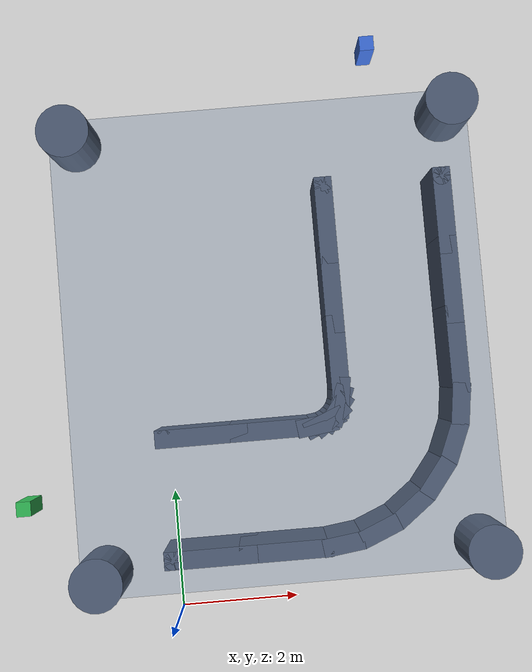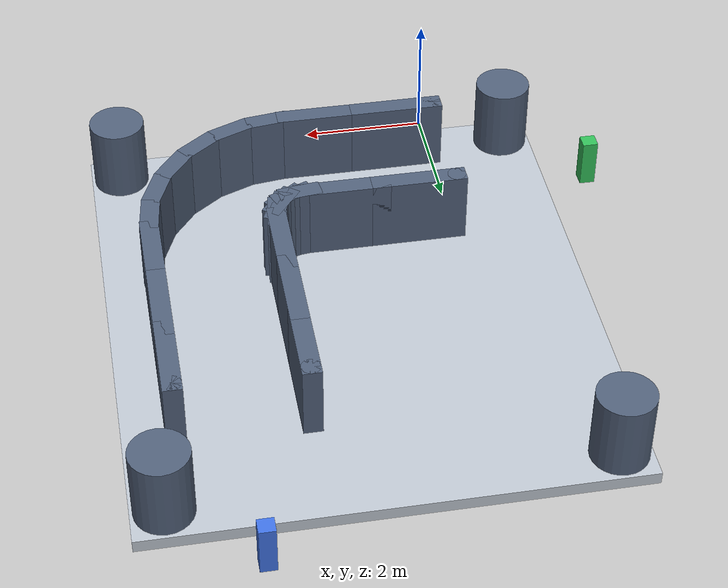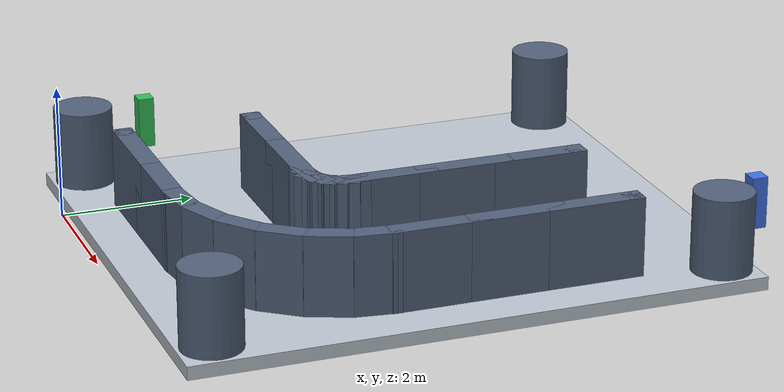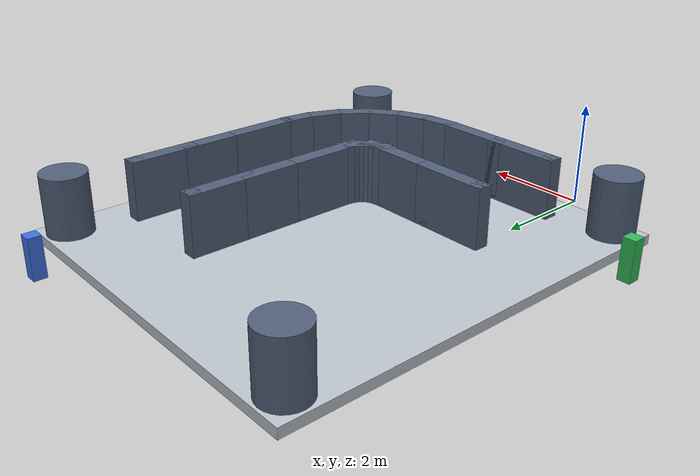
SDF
<?xml version="1.0"?>
<sdf version="1.6">
  <world name="l">
    <light type="directional" name="sun">
      <pose>0 0 10 0 0 0</pose>
      <diffuse>0.8 0.8 0.8 1</diffuse>
      <specular>0.2 0.2 0.2 1</specular>
      <direction>-0.5 0.5 -1</direction>
    </light>
    <scene>
      <ambient>0.3 0.3 0.3 1</ambient>
      <background>0.7 0.7 0.7 1</background>
      <shadows>true</shadows>
    </scene>
    <model name="ground_plane">
      <static>true</static>
      <pose>2.000 4.500 -0.1 0 0 0</pose>
      <link name="link">
        <collision name="collision">
          <geometry><box><size>7.60 8.60 0.2</size></box></geometry>
          <surface>
            <friction><ode><mu>1</mu><mu2>1</mu2></ode></friction>
          </surface>
        </collision>
        <visual name="visual">
          <geometry><box><size>7.60 8.60 0.2</size></box></geometry>
          <material>
            <ambient>0.75 0.78 0.82 1</ambient>
            <diffuse>0.75 0.78 0.82 1</diffuse>
          </material>
        </visual>
      </link>
    </model>
    <!-- ============ 迷宫墙体（深蓝灰；box 墙段 + 圆柱圆头） ============ -->
    <model name="wall_00">
      <static>true</static>
      <pose>0.625 3.000 0.600 0 0 0.0000</pose>
      <link name="link">
        <collision name="collision">
          <geometry><box><size>1.550 0.300 1.2</size></box></geometry>
        </collision>
        <visual name="visual">
          <geometry><box><size>1.550 0.300 1.2</size></box></geometry>
          <material><ambient>0.32 0.38 0.48 1</ambient><diffuse>0.32 0.38 0.48 1</diffuse></material>
        </visual>
      </link>
    </model>
    <model name="wall_01">
      <static>true</static>
      <pose>0.625 1.000 0.600 0 0 0.0000</pose>
      <link name="link">
        <collision name="collision">
          <geometry><box><size>1.550 0.300 1.2</size></box></geometry>
        </collision>
        <visual name="visual">
          <geometry><box><size>1.550 0.300 1.2</size></box></geometry>
          <material><ambient>0.32 0.38 0.48 1</ambient><diffuse>0.32 0.38 0.48 1</diffuse></material>
        </visual>
      </link>
    </model>
    <model name="wall_02">
      <static>true</static>
      <pose>1.875 3.000 0.600 0 0 0.0000</pose>
      <link name="link">
        <collision name="collision">
          <geometry><box><size>1.550 0.300 1.2</size></box></geometry>
        </collision>
        <visual name="visual">
          <geometry><box><size>1.550 0.300 1.2</size></box></geometry>
          <material><ambient>0.32 0.38 0.48 1</ambient><diffuse>0.32 0.38 0.48 1</diffuse></material>
        </visual>
      </link>
    </model>
    <model name="wall_03">
      <static>true</static>
      <pose>1.875 1.000 0.600 0 0 0.0000</pose>
      <link name="link">
        <collision name="collision">
          <geometry><box><size>1.550 0.300 1.2</size></box></geometry>
        </collision>
        <visual name="visual">
          <geometry><box><size>1.550 0.300 1.2</size></box></geometry>
          <material><ambient>0.32 0.38 0.48 1</ambient><diffuse>0.32 0.38 0.48 1</diffuse></material>
        </visual>
      </link>
    </model>
    <model name="wall_04">
      <static>true</static>
      <pose>2.564 3.017 0.600 0 0 0.1309</pose>
      <link name="link">
        <collision name="collision">
          <geometry><box><size>0.692 0.300 1.2</size></box></geometry>
        </collision>
        <visual name="visual">
          <geometry><box><size>0.692 0.300 1.2</size></box></geometry>
          <material><ambient>0.32 0.38 0.48 1</ambient><diffuse>0.32 0.38 0.48 1</diffuse></material>
        </visual>
      </link>
    </model>
    <model name="wall_05">
      <static>true</static>
      <pose>2.825 1.034 0.600 0 0 0.1309</pose>
      <link name="link">
        <collision name="collision">
          <geometry><box><size>0.692 0.300 1.2</size></box></geometry>
        </collision>
        <visual name="visual">
          <geometry><box><size>0.692 0.300 1.2</size></box></geometry>
          <material><ambient>0.32 0.38 0.48 1</ambient><diffuse>0.32 0.38 0.48 1</diffuse></material>
        </visual>
      </link>
    </model>
    <model name="wall_06">
      <static>true</static>
      <pose>2.686 3.050 0.600 0 0 0.3927</pose>
      <link name="link">
        <collision name="collision">
          <geometry><box><size>0.692 0.300 1.2</size></box></geometry>
        </collision>
        <visual name="visual">
          <geometry><box><size>0.692 0.300 1.2</size></box></geometry>
          <material><ambient>0.32 0.38 0.48 1</ambient><diffuse>0.32 0.38 0.48 1</diffuse></material>
        </visual>
      </link>
    </model>
    <model name="wall_07">
      <static>true</static>
      <pose>3.452 1.202 0.600 0 0 0.3927</pose>
      <link name="link">
        <collision name="collision">
          <geometry><box><size>0.692 0.300 1.2</size></box></geometry>
        </collision>
        <visual name="visual">
          <geometry><box><size>0.692 0.300 1.2</size></box></geometry>
          <material><ambient>0.32 0.38 0.48 1</ambient><diffuse>0.32 0.38 0.48 1</diffuse></material>
        </visual>
      </link>
    </model>
    <model name="wall_08">
      <static>true</static>
      <pose>2.797 3.114 0.600 0 0 0.6545</pose>
      <link name="link">
        <collision name="collision">
          <geometry><box><size>0.692 0.300 1.2</size></box></geometry>
        </collision>
        <visual name="visual">
          <geometry><box><size>0.692 0.300 1.2</size></box></geometry>
          <material><ambient>0.32 0.38 0.48 1</ambient><diffuse>0.32 0.38 0.48 1</diffuse></material>
        </visual>
      </link>
    </model>
    <model name="wall_09">
      <static>true</static>
      <pose>4.014 1.527 0.600 0 0 0.6545</pose>
      <link name="link">
        <collision name="collision">
          <geometry><box><size>0.692 0.300 1.2</size></box></geometry>
        </collision>
        <visual name="visual">
          <geometry><box><size>0.692 0.300 1.2</size></box></geometry>
          <material><ambient>0.32 0.38 0.48 1</ambient><diffuse>0.32 0.38 0.48 1</diffuse></material>
        </visual>
      </link>
    </model>
    <model name="wall_10">
      <static>true</static>
      <pose>2.886 3.203 0.600 0 0 0.9163</pose>
      <link name="link">
        <collision name="collision">
          <geometry><box><size>0.692 0.300 1.2</size></box></geometry>
        </collision>
        <visual name="visual">
          <geometry><box><size>0.692 0.300 1.2</size></box></geometry>
          <material><ambient>0.32 0.38 0.48 1</ambient><diffuse>0.32 0.38 0.48 1</diffuse></material>
        </visual>
      </link>
    </model>
    <model name="wall_11">
      <static>true</static>
      <pose>4.473 1.986 0.600 0 0 0.9163</pose>
      <link name="link">
        <collision name="collision">
          <geometry><box><size>0.692 0.300 1.2</size></box></geometry>
        </collision>
        <visual name="visual">
          <geometry><box><size>0.692 0.300 1.2</size></box></geometry>
          <material><ambient>0.32 0.38 0.48 1</ambient><diffuse>0.32 0.38 0.48 1</diffuse></material>
        </visual>
      </link>
    </model>
    <model name="wall_12">
      <static>true</static>
      <pose>2.950 3.314 0.600 0 0 1.1781</pose>
      <link name="link">
        <collision name="collision">
          <geometry><box><size>0.692 0.300 1.2</size></box></geometry>
        </collision>
        <visual name="visual">
          <geometry><box><size>0.692 0.300 1.2</size></box></geometry>
          <material><ambient>0.32 0.38 0.48 1</ambient><diffuse>0.32 0.38 0.48 1</diffuse></material>
        </visual>
      </link>
    </model>
    <model name="wall_13">
      <static>true</static>
      <pose>4.798 2.548 0.600 0 0 1.1781</pose>
      <link name="link">
        <collision name="collision">
          <geometry><box><size>0.692 0.300 1.2</size></box></geometry>
        </collision>
        <visual name="visual">
          <geometry><box><size>0.692 0.300 1.2</size></box></geometry>
          <material><ambient>0.32 0.38 0.48 1</ambient><diffuse>0.32 0.38 0.48 1</diffuse></material>
        </visual>
      </link>
    </model>
    <model name="wall_14">
      <static>true</static>
      <pose>2.983 3.436 0.600 0 0 1.4399</pose>
      <link name="link">
        <collision name="collision">
          <geometry><box><size>0.692 0.300 1.2</size></box></geometry>
        </collision>
        <visual name="visual">
          <geometry><box><size>0.692 0.300 1.2</size></box></geometry>
          <material><ambient>0.32 0.38 0.48 1</ambient><diffuse>0.32 0.38 0.48 1</diffuse></material>
        </visual>
      </link>
    </model>
    <model name="wall_15">
      <static>true</static>
      <pose>4.966 3.175 0.600 0 0 1.4399</pose>
      <link name="link">
        <collision name="collision">
          <geometry><box><size>0.692 0.300 1.2</size></box></geometry>
        </collision>
        <visual name="visual">
          <geometry><box><size>0.692 0.300 1.2</size></box></geometry>
          <material><ambient>0.32 0.38 0.48 1</ambient><diffuse>0.32 0.38 0.48 1</diffuse></material>
        </visual>
      </link>
    </model>
    <model name="wall_16">
      <static>true</static>
      <pose>3.000 4.083 0.600 0 0 1.5708</pose>
      <link name="link">
        <collision name="collision">
          <geometry><box><size>1.467 0.300 1.2</size></box></geometry>
        </collision>
        <visual name="visual">
          <geometry><box><size>1.467 0.300 1.2</size></box></geometry>
          <material><ambient>0.32 0.38 0.48 1</ambient><diffuse>0.32 0.38 0.48 1</diffuse></material>
        </visual>
      </link>
    </model>
    <model name="wall_17">
      <static>true</static>
      <pose>5.000 4.083 0.600 0 0 1.5708</pose>
      <link name="link">
        <collision name="collision">
          <geometry><box><size>1.467 0.300 1.2</size></box></geometry>
        </collision>
        <visual name="visual">
          <geometry><box><size>1.467 0.300 1.2</size></box></geometry>
          <material><ambient>0.32 0.38 0.48 1</ambient><diffuse>0.32 0.38 0.48 1</diffuse></material>
        </visual>
      </link>
    </model>
    <model name="wall_18">
      <static>true</static>
      <pose>3.000 5.250 0.600 0 0 1.5708</pose>
      <link name="link">
        <collision name="collision">
          <geometry><box><size>1.467 0.300 1.2</size></box></geometry>
        </collision>
        <visual name="visual">
          <geometry><box><size>1.467 0.300 1.2</size></box></geometry>
          <material><ambient>0.32 0.38 0.48 1</ambient><diffuse>0.32 0.38 0.48 1</diffuse></material>
        </visual>
      </link>
    </model>
    <model name="wall_19">
      <static>true</static>
      <pose>5.000 5.250 0.600 0 0 1.5708</pose>
      <link name="link">
        <collision name="collision">
          <geometry><box><size>1.467 0.300 1.2</size></box></geometry>
        </collision>
        <visual name="visual">
          <geometry><box><size>1.467 0.300 1.2</size></box></geometry>
          <material><ambient>0.32 0.38 0.48 1</ambient><diffuse>0.32 0.38 0.48 1</diffuse></material>
        </visual>
      </link>
    </model>
    <model name="wall_20">
      <static>true</static>
      <pose>3.000 6.417 0.600 0 0 1.5708</pose>
      <link name="link">
        <collision name="collision">
          <geometry><box><size>1.467 0.300 1.2</size></box></geometry>
        </collision>
        <visual name="visual">
          <geometry><box><size>1.467 0.300 1.2</size></box></geometry>
          <material><ambient>0.32 0.38 0.48 1</ambient><diffuse>0.32 0.38 0.48 1</diffuse></material>
        </visual>
      </link>
    </model>
    <model name="wall_21">
      <static>true</static>
      <pose>5.000 6.417 0.600 0 0 1.5708</pose>
      <link name="link">
        <collision name="collision">
          <geometry><box><size>1.467 0.300 1.2</size></box></geometry>
        </collision>
        <visual name="visual">
          <geometry><box><size>1.467 0.300 1.2</size></box></geometry>
          <material><ambient>0.32 0.38 0.48 1</ambient><diffuse>0.32 0.38 0.48 1</diffuse></material>
        </visual>
      </link>
    </model>
    <model name="pillar_00">
      <static>true</static>
      <pose>0.000 3.000 0.600 0 0 0</pose>
      <link name="link">
        <collision name="collision">
          <geometry><cylinder><radius>0.150</radius><length>1.2</length></cylinder></geometry>
        </collision>
        <visual name="visual">
          <geometry><cylinder><radius>0.150</radius><length>1.2</length></cylinder></geometry>
          <material><ambient>0.32 0.38 0.48 1</ambient><diffuse>0.32 0.38 0.48 1</diffuse></material>
        </visual>
      </link>
    </model>
    <model name="pillar_01">
      <static>true</static>
      <pose>3.000 7.000 0.600 0 0 0</pose>
      <link name="link">
        <collision name="collision">
          <geometry><cylinder><radius>0.150</radius><length>1.2</length></cylinder></geometry>
        </collision>
        <visual name="visual">
          <geometry><cylinder><radius>0.150</radius><length>1.2</length></cylinder></geometry>
          <material><ambient>0.32 0.38 0.48 1</ambient><diffuse>0.32 0.38 0.48 1</diffuse></material>
        </visual>
      </link>
    </model>
    <model name="pillar_02">
      <static>true</static>
      <pose>0.000 1.000 0.600 0 0 0</pose>
      <link name="link">
        <collision name="collision">
          <geometry><cylinder><radius>0.150</radius><length>1.2</length></cylinder></geometry>
        </collision>
        <visual name="visual">
          <geometry><cylinder><radius>0.150</radius><length>1.2</length></cylinder></geometry>
          <material><ambient>0.32 0.38 0.48 1</ambient><diffuse>0.32 0.38 0.48 1</diffuse></material>
        </visual>
      </link>
    </model>
    <model name="pillar_03">
      <static>true</static>
      <pose>5.000 7.000 0.600 0 0 0</pose>
      <link name="link">
        <collision name="collision">
          <geometry><cylinder><radius>0.150</radius><length>1.2</length></cylinder></geometry>
        </collision>
        <visual name="visual">
          <geometry><cylinder><radius>0.150</radius><length>1.2</length></cylinder></geometry>
          <material><ambient>0.32 0.38 0.48 1</ambient><diffuse>0.32 0.38 0.48 1</diffuse></material>
        </visual>
      </link>
    </model>
    <model name="pillar_04">
      <static>true</static>
      <pose>-1.300 0.700 0.600 0 0 0</pose>
      <link name="link">
        <collision name="collision">
          <geometry><cylinder><radius>0.450</radius><length>1.2</length></cylinder></geometry>
        </collision>
        <visual name="visual">
          <geometry><cylinder><radius>0.450</radius><length>1.2</length></cylinder></geometry>
          <material><ambient>0.32 0.38 0.48 1</ambient><diffuse>0.32 0.38 0.48 1</diffuse></material>
        </visual>
      </link>
    </model>
    <model name="pillar_05">
      <static>true</static>
      <pose>-1.300 8.300 0.600 0 0 0</pose>
      <link name="link">
        <collision name="collision">
          <geometry><cylinder><radius>0.450</radius><length>1.2</length></cylinder></geometry>
        </collision>
        <visual name="visual">
          <geometry><cylinder><radius>0.450</radius><length>1.2</length></cylinder></geometry>
          <material><ambient>0.32 0.38 0.48 1</ambient><diffuse>0.32 0.38 0.48 1</diffuse></material>
        </visual>
      </link>
    </model>
    <model name="pillar_06">
      <static>true</static>
      <pose>5.300 0.700 0.600 0 0 0</pose>
      <link name="link">
        <collision name="collision">
          <geometry><cylinder><radius>0.450</radius><length>1.2</length></cylinder></geometry>
        </collision>
        <visual name="visual">
          <geometry><cylinder><radius>0.450</radius><length>1.2</length></cylinder></geometry>
          <material><ambient>0.32 0.38 0.48 1</ambient><diffuse>0.32 0.38 0.48 1</diffuse></material>
        </visual>
      </link>
    </model>
    <model name="pillar_07">
      <static>true</static>
      <pose>5.300 8.300 0.600 0 0 0</pose>
      <link name="link">
        <collision name="collision">
          <geometry><cylinder><radius>0.450</radius><length>1.2</length></cylinder></geometry>
        </collision>
        <visual name="visual">
          <geometry><cylinder><radius>0.450</radius><length>1.2</length></cylinder></geometry>
          <material><ambient>0.32 0.38 0.48 1</ambient><diffuse>0.32 0.38 0.48 1</diffuse></material>
        </visual>
      </link>
    </model>
    <!-- ============ 起终点标记柱 ============ -->
    <model name="marker_entry">
      <static>true</static>
      <pose>-2.500 2.000 0.4 0 0 0</pose>
      <link name="link">
        <collision name="collision">
          <geometry><box><size>0.25 0.25 0.8</size></box></geometry>
        </collision>
        <visual name="visual">
          <geometry><box><size>0.25 0.25 0.8</size></box></geometry>
          <material><ambient>0.2 0.75 0.35 1</ambient><diffuse>0.2 0.75 0.35 1</diffuse></material>
        </visual>
      </link>
    </model>
    <model name="marker_exit">
      <static>true</static>
      <pose>4.000 9.500 0.4 0 0 0</pose>
      <link name="link">
        <collision name="collision">
          <geometry><box><size>0.25 0.25 0.8</size></box></geometry>
        </collision>
        <visual name="visual">
          <geometry><box><size>0.25 0.25 0.8</size></box></geometry>
          <material><ambient>0.25 0.45 0.9 1</ambient><diffuse>0.25 0.45 0.9 1</diffuse></material>
        </visual>
      </link>
    </model>
  </world>
</sdf>
